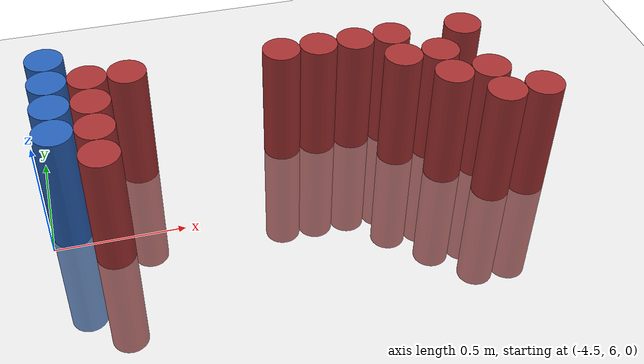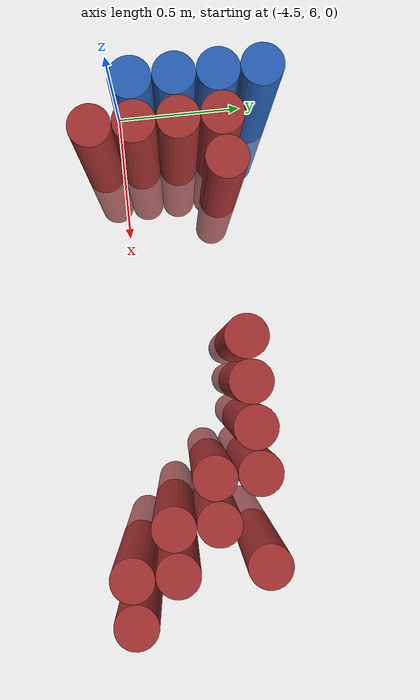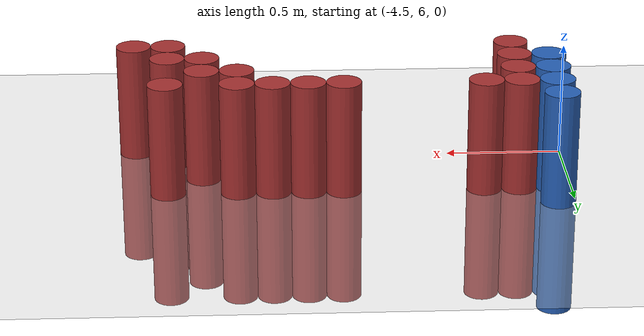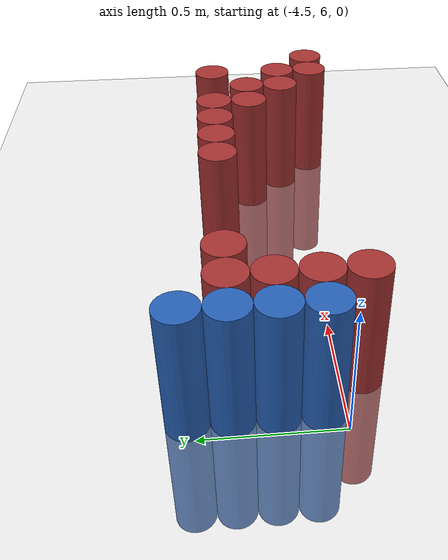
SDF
<sdf version="1.6">
 <world name="default">
  <model name="ground_plane">
   <static>1</static>
   <link name="link">
    <collision name="collision">
     <geometry><plane><normal>0 0 1</normal><size>100 100</size></plane></geometry>
     <surface><friction><ode><mu>100</mu><mu2>50</mu2></ode></friction></surface>
    </collision>
    <visual name="visual">
     <cast_shadows>0</cast_shadows>
     <geometry><plane><normal>0 0 1</normal><size>100 100</size></plane></geometry>
     <material>
      <script><uri>file://media/materials/scripts/gazebo.material</uri><name>Gazebo/Grey</name></script>
     </material>
    </visual>
   </link>
  </model>
  <model name="unit_cylinder_102">
   <static>1</static>
   <pose>-4.425000 6.075000 0.000000 0.000000 0.000000 0.000000</pose>
   <link name="link">
    <inertial>
     <mass>1</mass>
     <inertia><ixx>0.145833</ixx><ixy>0</ixy><ixz>0</ixz><iyy>0.145833</iyy><iyz>0</iyz><izz>0.125</izz></inertia>
    </inertial>
    <collision name="collision">
     <geometry><cylinder><radius>0.075000</radius><length>1</length></cylinder></geometry>
    </collision>
    <visual name="visual">
     <geometry><cylinder><radius>0.075000</radius><length>1</length></cylinder></geometry>
     <material>
      <ambient>0.152000 0.379000 0.720000 1</ambient>
      <diffuse>0.152000 0.379000 0.720000 1</diffuse>
     </material>
     <material>
      <script><name>Gazebo/Grey</name><uri>file://media/materials/scripts/gazebo.material</uri></script>
     </material>
    </visual>
    <sensor name="sensor_contact" type="contact"><contact><collision>collision</collision></contact></sensor>
   </link>
   <plugin filename="gz-sim-touchplugin-system" name="gz::sim::systems::TouchPlugin">
    <target>robot</target>
    <namespace>robot</namespace>
    <time>0.001</time>
    <enabled>true</enabled>
   </plugin>
  </model>
  <model name="unit_cylinder_103">
   <static>1</static>
   <pose>-4.425000 6.225000 0.000000 0.000000 0.000000 0.000000</pose>
   <link name="link">
    <inertial>
     <mass>1</mass>
     <inertia><ixx>0.145833</ixx><ixy>0</ixy><ixz>0</ixz><iyy>0.145833</iyy><iyz>0</iyz><izz>0.125</izz></inertia>
    </inertial>
    <collision name="collision">
     <geometry><cylinder><radius>0.075000</radius><length>1</length></cylinder></geometry>
    </collision>
    <visual name="visual">
     <geometry><cylinder><radius>0.075000</radius><length>1</length></cylinder></geometry>
     <material>
      <ambient>0.152000 0.379000 0.720000 1</ambient>
      <diffuse>0.152000 0.379000 0.720000 1</diffuse>
     </material>
     <material>
      <script><name>Gazebo/Grey</name><uri>file://media/materials/scripts/gazebo.material</uri></script>
     </material>
    </visual>
    <sensor name="sensor_contact" type="contact"><contact><collision>collision</collision></contact></sensor>
   </link>
   <plugin filename="gz-sim-touchplugin-system" name="gz::sim::systems::TouchPlugin">
    <target>robot</target>
    <namespace>robot</namespace>
    <time>0.001</time>
    <enabled>true</enabled>
   </plugin>
  </model>
  <model name="unit_cylinder_104">
   <static>1</static>
   <pose>-4.425000 6.375000 0.000000 0.000000 0.000000 0.000000</pose>
   <link name="link">
    <inertial>
     <mass>1</mass>
     <inertia><ixx>0.145833</ixx><ixy>0</ixy><ixz>0</ixz><iyy>0.145833</iyy><iyz>0</iyz><izz>0.125</izz></inertia>
    </inertial>
    <collision name="collision">
     <geometry><cylinder><radius>0.075000</radius><length>1</length></cylinder></geometry>
    </collision>
    <visual name="visual">
     <geometry><cylinder><radius>0.075000</radius><length>1</length></cylinder></geometry>
     <material>
      <ambient>0.152000 0.379000 0.720000 1</ambient>
      <diffuse>0.152000 0.379000 0.720000 1</diffuse>
     </material>
     <material>
      <script><name>Gazebo/Grey</name><uri>file://media/materials/scripts/gazebo.material</uri></script>
     </material>
    </visual>
    <sensor name="sensor_contact" type="contact"><contact><collision>collision</collision></contact></sensor>
   </link>
   <plugin filename="gz-sim-touchplugin-system" name="gz::sim::systems::TouchPlugin">
    <target>robot</target>
    <namespace>robot</namespace>
    <time>0.001</time>
    <enabled>true</enabled>
   </plugin>
  </model>
  <model name="unit_cylinder_105">
   <static>1</static>
   <pose>-4.425000 6.525000 0.000000 0.000000 0.000000 0.000000</pose>
   <link name="link">
    <inertial>
     <mass>1</mass>
     <inertia><ixx>0.145833</ixx><ixy>0</ixy><ixz>0</ixz><iyy>0.145833</iyy><iyz>0</iyz><izz>0.125</izz></inertia>
    </inertial>
    <collision name="collision">
     <geometry><cylinder><radius>0.075000</radius><length>1</length></cylinder></geometry>
    </collision>
    <visual name="visual">
     <geometry><cylinder><radius>0.075000</radius><length>1</length></cylinder></geometry>
     <material>
      <ambient>0.152000 0.379000 0.720000 1</ambient>
      <diffuse>0.152000 0.379000 0.720000 1</diffuse>
     </material>
     <material>
      <script><name>Gazebo/Grey</name><uri>file://media/materials/scripts/gazebo.material</uri></script>
     </material>
    </visual>
    <sensor name="sensor_contact" type="contact"><contact><collision>collision</collision></contact></sensor>
   </link>
   <plugin filename="gz-sim-touchplugin-system" name="gz::sim::systems::TouchPlugin">
    <target>robot</target>
    <namespace>robot</namespace>
    <time>0.001</time>
    <enabled>true</enabled>
   </plugin>
  </model>
  <model name="unit_cylinder_130">
   <static>1</static>
   <pose>-4.275000 5.925000 0.000000 0.000000 0.000000 0.000000</pose>
   <link name="link">
    <inertial>
     <mass>1</mass>
     <inertia><ixx>0.145833</ixx><ixy>0</ixy><ixz>0</ixz><iyy>0.145833</iyy><iyz>0</iyz><izz>0.125</izz></inertia>
    </inertial>
    <collision name="collision">
     <geometry><cylinder><radius>0.075000</radius><length>1</length></cylinder></geometry>
    </collision>
    <visual name="visual">
     <geometry><cylinder><radius>0.075000</radius><length>1</length></cylinder></geometry>
     <material>
      <ambient>0.648000 0.192000 0.192000 1</ambient>
      <diffuse>0.648000 0.192000 0.192000 1</diffuse>
     </material>
     <material>
      <script><name>Gazebo/Grey</name><uri>file://media/materials/scripts/gazebo.material</uri></script>
     </material>
    </visual>
    <sensor name="sensor_contact" type="contact"><contact><collision>collision</collision></contact></sensor>
   </link>
   <plugin filename="gz-sim-touchplugin-system" name="gz::sim::systems::TouchPlugin">
    <target>robot</target>
    <namespace>robot</namespace>
    <time>0.001</time>
    <enabled>true</enabled>
   </plugin>
  </model>
  <model name="unit_cylinder_131">
   <static>1</static>
   <pose>-4.275000 6.075000 0.000000 0.000000 0.000000 0.000000</pose>
   <link name="link">
    <inertial>
     <mass>1</mass>
     <inertia><ixx>0.145833</ixx><ixy>0</ixy><ixz>0</ixz><iyy>0.145833</iyy><iyz>0</iyz><izz>0.125</izz></inertia>
    </inertial>
    <collision name="collision">
     <geometry><cylinder><radius>0.075000</radius><length>1</length></cylinder></geometry>
    </collision>
    <visual name="visual">
     <geometry><cylinder><radius>0.075000</radius><length>1</length></cylinder></geometry>
     <material>
      <ambient>0.648000 0.192000 0.192000 1</ambient>
      <diffuse>0.648000 0.192000 0.192000 1</diffuse>
     </material>
     <material>
      <script><name>Gazebo/Grey</name><uri>file://media/materials/scripts/gazebo.material</uri></script>
     </material>
    </visual>
    <sensor name="sensor_contact" type="contact"><contact><collision>collision</collision></contact></sensor>
   </link>
   <plugin filename="gz-sim-touchplugin-system" name="gz::sim::systems::TouchPlugin">
    <target>robot</target>
    <namespace>robot</namespace>
    <time>0.001</time>
    <enabled>true</enabled>
   </plugin>
  </model>
  <model name="unit_cylinder_132">
   <static>1</static>
   <pose>-4.275000 6.225000 0.000000 0.000000 0.000000 0.000000</pose>
   <link name="link">
    <inertial>
     <mass>1</mass>
     <inertia><ixx>0.145833</ixx><ixy>0</ixy><ixz>0</ixz><iyy>0.145833</iyy><iyz>0</iyz><izz>0.125</izz></inertia>
    </inertial>
    <collision name="collision">
     <geometry><cylinder><radius>0.075000</radius><length>1</length></cylinder></geometry>
    </collision>
    <visual name="visual">
     <geometry><cylinder><radius>0.075000</radius><length>1</length></cylinder></geometry>
     <material>
      <ambient>0.648000 0.192000 0.192000 1</ambient>
      <diffuse>0.648000 0.192000 0.192000 1</diffuse>
     </material>
     <material>
      <script><name>Gazebo/Grey</name><uri>file://media/materials/scripts/gazebo.material</uri></script>
     </material>
    </visual>
    <sensor name="sensor_contact" type="contact"><contact><collision>collision</collision></contact></sensor>
   </link>
   <plugin filename="gz-sim-touchplugin-system" name="gz::sim::systems::TouchPlugin">
    <target>robot</target>
    <namespace>robot</namespace>
    <time>0.001</time>
    <enabled>true</enabled>
   </plugin>
  </model>
  <model name="unit_cylinder_133">
   <static>1</static>
   <pose>-4.275000 6.375000 0.000000 0.000000 0.000000 0.000000</pose>
   <link name="link">
    <inertial>
     <mass>1</mass>
     <inertia><ixx>0.145833</ixx><ixy>0</ixy><ixz>0</ixz><iyy>0.145833</iyy><iyz>0</iyz><izz>0.125</izz></inertia>
    </inertial>
    <collision name="collision">
     <geometry><cylinder><radius>0.075000</radius><length>1</length></cylinder></geometry>
    </collision>
    <visual name="visual">
     <geometry><cylinder><radius>0.075000</radius><length>1</length></cylinder></geometry>
     <material>
      <ambient>0.648000 0.192000 0.192000 1</ambient>
      <diffuse>0.648000 0.192000 0.192000 1</diffuse>
     </material>
     <material>
      <script><name>Gazebo/Grey</name><uri>file://media/materials/scripts/gazebo.material</uri></script>
     </material>
    </visual>
    <sensor name="sensor_contact" type="contact"><contact><collision>collision</collision></contact></sensor>
   </link>
   <plugin filename="gz-sim-touchplugin-system" name="gz::sim::systems::TouchPlugin">
    <target>robot</target>
    <namespace>robot</namespace>
    <time>0.001</time>
    <enabled>true</enabled>
   </plugin>
  </model>
  <model name="unit_cylinder_137">
   <static>1</static>
   <pose>-4.125000 6.375000 0.000000 0.000000 0.000000 0.000000</pose>
   <link name="link">
    <inertial>
     <mass>1</mass>
     <inertia><ixx>0.145833</ixx><ixy>0</ixy><ixz>0</ixz><iyy>0.145833</iyy><iyz>0</iyz><izz>0.125</izz></inertia>
    </inertial>
    <collision name="collision">
     <geometry><cylinder><radius>0.075000</radius><length>1</length></cylinder></geometry>
    </collision>
    <visual name="visual">
     <geometry><cylinder><radius>0.075000</radius><length>1</length></cylinder></geometry>
     <material>
      <ambient>0.648000 0.192000 0.192000 1</ambient>
      <diffuse>0.648000 0.192000 0.192000 1</diffuse>
     </material>
     <material>
      <script><name>Gazebo/Grey</name><uri>file://media/materials/scripts/gazebo.material</uri></script>
     </material>
    </visual>
    <sensor name="sensor_contact" type="contact"><contact><collision>collision</collision></contact></sensor>
   </link>
   <plugin filename="gz-sim-touchplugin-system" name="gz::sim::systems::TouchPlugin">
    <target>robot</target>
    <namespace>robot</namespace>
    <time>0.001</time>
    <enabled>true</enabled>
   </plugin>
  </model>
  <model name="unit_cylinder_164">
   <static>1</static>
   <pose>-3.525000 6.375000 0.000000 0.000000 0.000000 0.000000</pose>
   <link name="link">
    <inertial>
     <mass>1</mass>
     <inertia><ixx>0.145833</ixx><ixy>0</ixy><ixz>0</ixz><iyy>0.145833</iyy><iyz>0</iyz><izz>0.125</izz></inertia>
    </inertial>
    <collision name="collision">
     <geometry><cylinder><radius>0.075000</radius><length>1</length></cylinder></geometry>
    </collision>
    <visual name="visual">
     <geometry><cylinder><radius>0.075000</radius><length>1</length></cylinder></geometry>
     <material>
      <ambient>0.648000 0.192000 0.192000 1</ambient>
      <diffuse>0.648000 0.192000 0.192000 1</diffuse>
     </material>
     <material>
      <script><name>Gazebo/Grey</name><uri>file://media/materials/scripts/gazebo.material</uri></script>
     </material>
    </visual>
    <sensor name="sensor_contact" type="contact"><contact><collision>collision</collision></contact></sensor>
   </link>
   <plugin filename="gz-sim-touchplugin-system" name="gz::sim::systems::TouchPlugin">
    <target>robot</target>
    <namespace>robot</namespace>
    <time>0.001</time>
    <enabled>true</enabled>
   </plugin>
  </model>
  <model name="unit_cylinder_169">
   <static>1</static>
   <pose>-3.375000 6.375000 0.000000 0.000000 0.000000 0.000000</pose>
   <link name="link">
    <inertial>
     <mass>1</mass>
     <inertia><ixx>0.145833</ixx><ixy>0</ixy><ixz>0</ixz><iyy>0.145833</iyy><iyz>0</iyz><izz>0.125</izz></inertia>
    </inertial>
    <collision name="collision">
     <geometry><cylinder><radius>0.075000</radius><length>1</length></cylinder></geometry>
    </collision>
    <visual name="visual">
     <geometry><cylinder><radius>0.075000</radius><length>1</length></cylinder></geometry>
     <material>
      <ambient>0.648000 0.192000 0.192000 1</ambient>
      <diffuse>0.648000 0.192000 0.192000 1</diffuse>
     </material>
     <material>
      <script><name>Gazebo/Grey</name><uri>file://media/materials/scripts/gazebo.material</uri></script>
     </material>
    </visual>
    <sensor name="sensor_contact" type="contact"><contact><collision>collision</collision></contact></sensor>
   </link>
   <plugin filename="gz-sim-touchplugin-system" name="gz::sim::systems::TouchPlugin">
    <target>robot</target>
    <namespace>robot</namespace>
    <time>0.001</time>
    <enabled>true</enabled>
   </plugin>
  </model>
  <model name="unit_cylinder_180">
   <static>1</static>
   <pose>-3.225000 6.375000 0.000000 0.000000 0.000000 0.000000</pose>
   <link name="link">
    <inertial>
     <mass>1</mass>
     <inertia><ixx>0.145833</ixx><ixy>0</ixy><ixz>0</ixz><iyy>0.145833</iyy><iyz>0</iyz><izz>0.125</izz></inertia>
    </inertial>
    <collision name="collision">
     <geometry><cylinder><radius>0.075000</radius><length>1</length></cylinder></geometry>
    </collision>
    <visual name="visual">
     <geometry><cylinder><radius>0.075000</radius><length>1</length></cylinder></geometry>
     <material>
      <ambient>0.648000 0.192000 0.192000 1</ambient>
      <diffuse>0.648000 0.192000 0.192000 1</diffuse>
     </material>
     <material>
      <script><name>Gazebo/Grey</name><uri>file://media/materials/scripts/gazebo.material</uri></script>
     </material>
    </visual>
    <sensor name="sensor_contact" type="contact"><contact><collision>collision</collision></contact></sensor>
   </link>
   <plugin filename="gz-sim-touchplugin-system" name="gz::sim::systems::TouchPlugin">
    <target>robot</target>
    <namespace>robot</namespace>
    <time>0.001</time>
    <enabled>true</enabled>
   </plugin>
  </model>
  <model name="unit_cylinder_188">
   <static>1</static>
   <pose>-3.075000 6.225000 0.000000 0.000000 0.000000 0.000000</pose>
   <link name="link">
    <inertial>
     <mass>1</mass>
     <inertia><ixx>0.145833</ixx><ixy>0</ixy><ixz>0</ixz><iyy>0.145833</iyy><iyz>0</iyz><izz>0.125</izz></inertia>
    </inertial>
    <collision name="collision">
     <geometry><cylinder><radius>0.075000</radius><length>1</length></cylinder></geometry>
    </collision>
    <visual name="visual">
     <geometry><cylinder><radius>0.075000</radius><length>1</length></cylinder></geometry>
     <material>
      <ambient>0.648000 0.192000 0.192000 1</ambient>
      <diffuse>0.648000 0.192000 0.192000 1</diffuse>
     </material>
     <material>
      <script><name>Gazebo/Grey</name><uri>file://media/materials/scripts/gazebo.material</uri></script>
     </material>
    </visual>
    <sensor name="sensor_contact" type="contact"><contact><collision>collision</collision></contact></sensor>
   </link>
   <plugin filename="gz-sim-touchplugin-system" name="gz::sim::systems::TouchPlugin">
    <target>robot</target>
    <namespace>robot</namespace>
    <time>0.001</time>
    <enabled>true</enabled>
   </plugin>
  </model>
  <model name="unit_cylinder_189">
   <static>1</static>
   <pose>-3.075000 6.375000 0.000000 0.000000 0.000000 0.000000</pose>
   <link name="link">
    <inertial>
     <mass>1</mass>
     <inertia><ixx>0.145833</ixx><ixy>0</ixy><ixz>0</ixz><iyy>0.145833</iyy><iyz>0</iyz><izz>0.125</izz></inertia>
    </inertial>
    <collision name="collision">
     <geometry><cylinder><radius>0.075000</radius><length>1</length></cylinder></geometry>
    </collision>
    <visual name="visual">
     <geometry><cylinder><radius>0.075000</radius><length>1</length></cylinder></geometry>
     <material>
      <ambient>0.648000 0.192000 0.192000 1</ambient>
      <diffuse>0.648000 0.192000 0.192000 1</diffuse>
     </material>
     <material>
      <script><name>Gazebo/Grey</name><uri>file://media/materials/scripts/gazebo.material</uri></script>
     </material>
    </visual>
    <sensor name="sensor_contact" type="contact"><contact><collision>collision</collision></contact></sensor>
   </link>
   <plugin filename="gz-sim-touchplugin-system" name="gz::sim::systems::TouchPlugin">
    <target>robot</target>
    <namespace>robot</namespace>
    <time>0.001</time>
    <enabled>true</enabled>
   </plugin>
  </model>
  <model name="unit_cylinder_193">
   <static>1</static>
   <pose>-2.925000 6.075000 0.000000 0.000000 0.000000 0.000000</pose>
   <link name="link">
    <inertial>
     <mass>1</mass>
     <inertia><ixx>0.145833</ixx><ixy>0</ixy><ixz>0</ixz><iyy>0.145833</iyy><iyz>0</iyz><izz>0.125</izz></inertia>
    </inertial>
    <collision name="collision">
     <geometry><cylinder><radius>0.075000</radius><length>1</length></cylinder></geometry>
    </collision>
    <visual name="visual">
     <geometry><cylinder><radius>0.075000</radius><length>1</length></cylinder></geometry>
     <material>
      <ambient>0.648000 0.192000 0.192000 1</ambient>
      <diffuse>0.648000 0.192000 0.192000 1</diffuse>
     </material>
     <material>
      <script><name>Gazebo/Grey</name><uri>file://media/materials/scripts/gazebo.material</uri></script>
     </material>
    </visual>
    <sensor name="sensor_contact" type="contact"><contact><collision>collision</collision></contact></sensor>
   </link>
   <plugin filename="gz-sim-touchplugin-system" name="gz::sim::systems::TouchPlugin">
    <target>robot</target>
    <namespace>robot</namespace>
    <time>0.001</time>
    <enabled>true</enabled>
   </plugin>
  </model>
  <model name="unit_cylinder_194">
   <static>1</static>
   <pose>-2.925000 6.225000 0.000000 0.000000 0.000000 0.000000</pose>
   <link name="link">
    <inertial>
     <mass>1</mass>
     <inertia><ixx>0.145833</ixx><ixy>0</ixy><ixz>0</ixz><iyy>0.145833</iyy><iyz>0</iyz><izz>0.125</izz></inertia>
    </inertial>
    <collision name="collision">
     <geometry><cylinder><radius>0.075000</radius><length>1</length></cylinder></geometry>
    </collision>
    <visual name="visual">
     <geometry><cylinder><radius>0.075000</radius><length>1</length></cylinder></geometry>
     <material>
      <ambient>0.648000 0.192000 0.192000 1</ambient>
      <diffuse>0.648000 0.192000 0.192000 1</diffuse>
     </material>
     <material>
      <script><name>Gazebo/Grey</name><uri>file://media/materials/scripts/gazebo.material</uri></script>
     </material>
    </visual>
    <sensor name="sensor_contact" type="contact"><contact><collision>collision</collision></contact></sensor>
   </link>
   <plugin filename="gz-sim-touchplugin-system" name="gz::sim::systems::TouchPlugin">
    <target>robot</target>
    <namespace>robot</namespace>
    <time>0.001</time>
    <enabled>true</enabled>
   </plugin>
  </model>
  <model name="unit_cylinder_198">
   <static>1</static>
   <pose>-2.775000 5.925000 0.000000 0.000000 0.000000 0.000000</pose>
   <link name="link">
    <inertial>
     <mass>1</mass>
     <inertia><ixx>0.145833</ixx><ixy>0</ixy><ixz>0</ixz><iyy>0.145833</iyy><iyz>0</iyz><izz>0.125</izz></inertia>
    </inertial>
    <collision name="collision">
     <geometry><cylinder><radius>0.075000</radius><length>1</length></cylinder></geometry>
    </collision>
    <visual name="visual">
     <geometry><cylinder><radius>0.075000</radius><length>1</length></cylinder></geometry>
     <material>
      <ambient>0.648000 0.192000 0.192000 1</ambient>
      <diffuse>0.648000 0.192000 0.192000 1</diffuse>
     </material>
     <material>
      <script><name>Gazebo/Grey</name><uri>file://media/materials/scripts/gazebo.material</uri></script>
     </material>
    </visual>
    <sensor name="sensor_contact" type="contact"><contact><collision>collision</collision></contact></sensor>
   </link>
   <plugin filename="gz-sim-touchplugin-system" name="gz::sim::systems::TouchPlugin">
    <target>robot</target>
    <namespace>robot</namespace>
    <time>0.001</time>
    <enabled>true</enabled>
   </plugin>
  </model>
  <model name="unit_cylinder_199">
   <static>1</static>
   <pose>-2.775000 6.075000 0.000000 0.000000 0.000000 0.000000</pose>
   <link name="link">
    <inertial>
     <mass>1</mass>
     <inertia><ixx>0.145833</ixx><ixy>0</ixy><ixz>0</ixz><iyy>0.145833</iyy><iyz>0</iyz><izz>0.125</izz></inertia>
    </inertial>
    <collision name="collision">
     <geometry><cylinder><radius>0.075000</radius><length>1</length></cylinder></geometry>
    </collision>
    <visual name="visual">
     <geometry><cylinder><radius>0.075000</radius><length>1</length></cylinder></geometry>
     <material>
      <ambient>0.648000 0.192000 0.192000 1</ambient>
      <diffuse>0.648000 0.192000 0.192000 1</diffuse>
     </material>
     <material>
      <script><name>Gazebo/Grey</name><uri>file://media/materials/scripts/gazebo.material</uri></script>
     </material>
    </visual>
    <sensor name="sensor_contact" type="contact"><contact><collision>collision</collision></contact></sensor>
   </link>
   <plugin filename="gz-sim-touchplugin-system" name="gz::sim::systems::TouchPlugin">
    <target>robot</target>
    <namespace>robot</namespace>
    <time>0.001</time>
    <enabled>true</enabled>
   </plugin>
  </model>
  <model name="unit_cylinder_200">
   <static>1</static>
   <pose>-2.775000 6.375000 0.000000 0.000000 0.000000 0.000000</pose>
   <link name="link">
    <inertial>
     <mass>1</mass>
     <inertia><ixx>0.145833</ixx><ixy>0</ixy><ixz>0</ixz><iyy>0.145833</iyy><iyz>0</iyz><izz>0.125</izz></inertia>
    </inertial>
    <collision name="collision">
     <geometry><cylinder><radius>0.075000</radius><length>1</length></cylinder></geometry>
    </collision>
    <visual name="visual">
     <geometry><cylinder><radius>0.075000</radius><length>1</length></cylinder></geometry>
     <material>
      <ambient>0.648000 0.192000 0.192000 1</ambient>
      <diffuse>0.648000 0.192000 0.192000 1</diffuse>
     </material>
     <material>
      <script><name>Gazebo/Grey</name><uri>file://media/materials/scripts/gazebo.material</uri></script>
     </material>
    </visual>
    <sensor name="sensor_contact" type="contact"><contact><collision>collision</collision></contact></sensor>
   </link>
   <plugin filename="gz-sim-touchplugin-system" name="gz::sim::systems::TouchPlugin">
    <target>robot</target>
    <namespace>robot</namespace>
    <time>0.001</time>
    <enabled>true</enabled>
   </plugin>
  </model>
  <model name="unit_cylinder_209">
   <static>1</static>
   <pose>-2.625000 5.925000 0.000000 0.000000 0.000000 0.000000</pose>
   <link name="link">
    <inertial>
     <mass>1</mass>
     <inertia><ixx>0.145833</ixx><ixy>0</ixy><ixz>0</ixz><iyy>0.145833</iyy><iyz>0</iyz><izz>0.125</izz></inertia>
    </inertial>
    <collision name="collision">
     <geometry><cylinder><radius>0.075000</radius><length>1</length></cylinder></geometry>
    </collision>
    <visual name="visual">
     <geometry><cylinder><radius>0.075000</radius><length>1</length></cylinder></geometry>
     <material>
      <ambient>0.648000 0.192000 0.192000 1</ambient>
      <diffuse>0.648000 0.192000 0.192000 1</diffuse>
     </material>
     <material>
      <script><name>Gazebo/Grey</name><uri>file://media/materials/scripts/gazebo.material</uri></script>
     </material>
    </visual>
    <sensor name="sensor_contact" type="contact"><contact><collision>collision</collision></contact></sensor>
   </link>
   <plugin filename="gz-sim-touchplugin-system" name="gz::sim::systems::TouchPlugin">
    <target>robot</target>
    <namespace>robot</namespace>
    <time>0.001</time>
    <enabled>true</enabled>
   </plugin>
  </model>
 </world>
</sdf>
